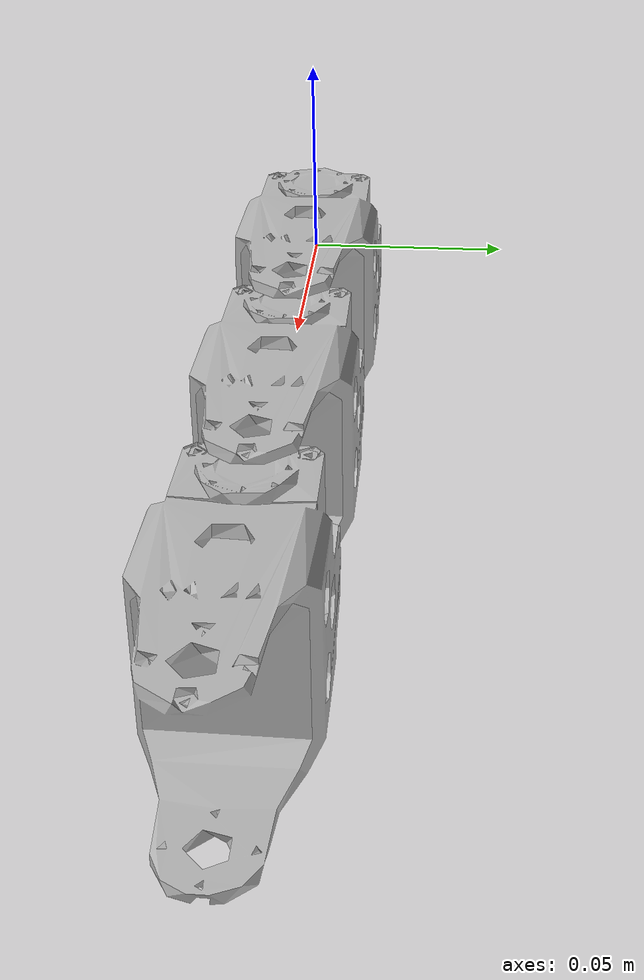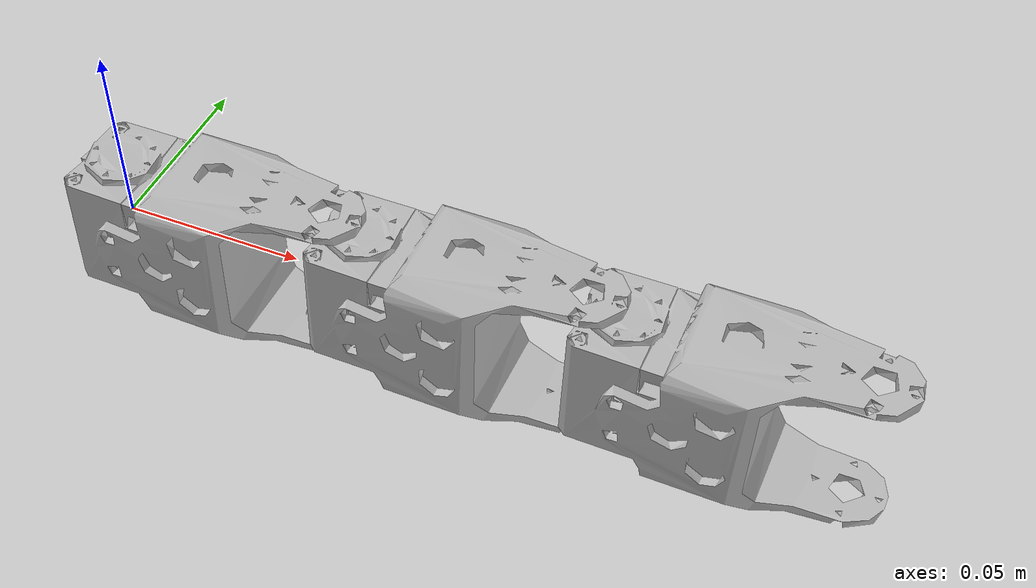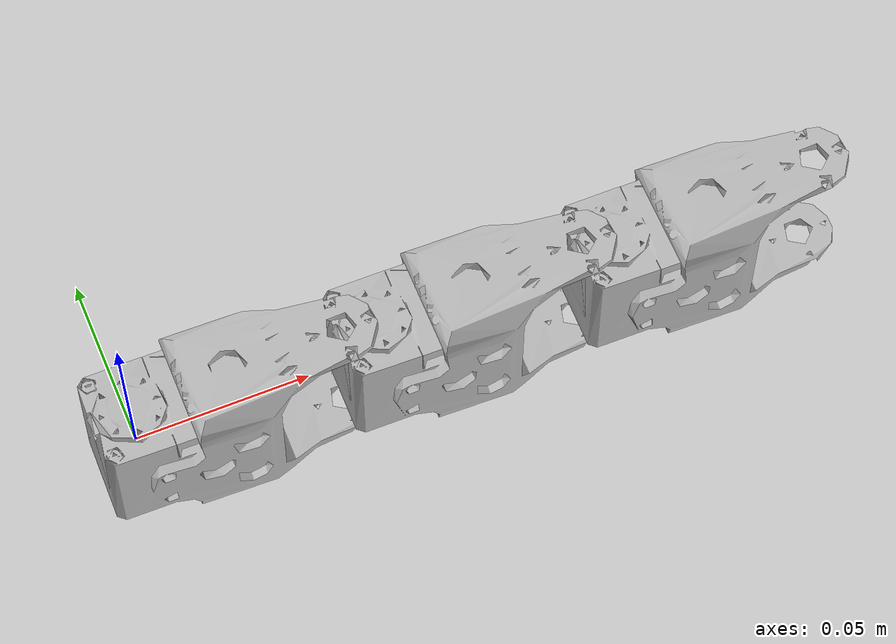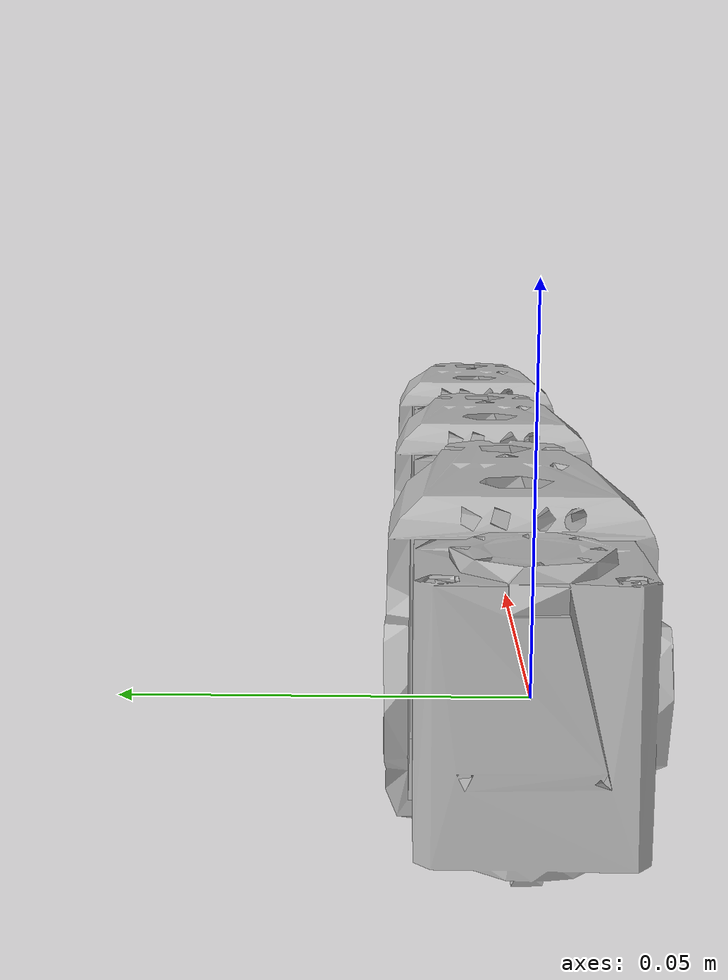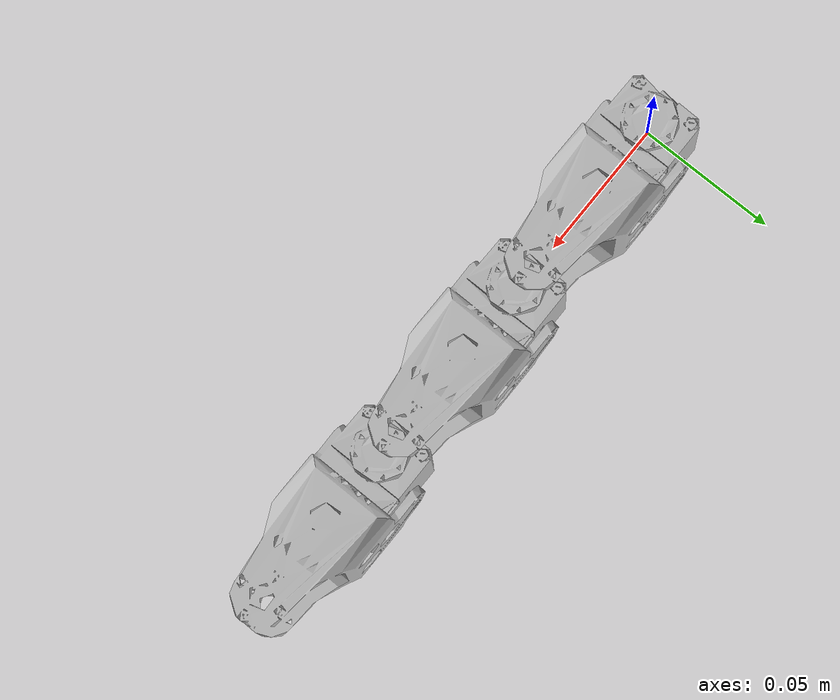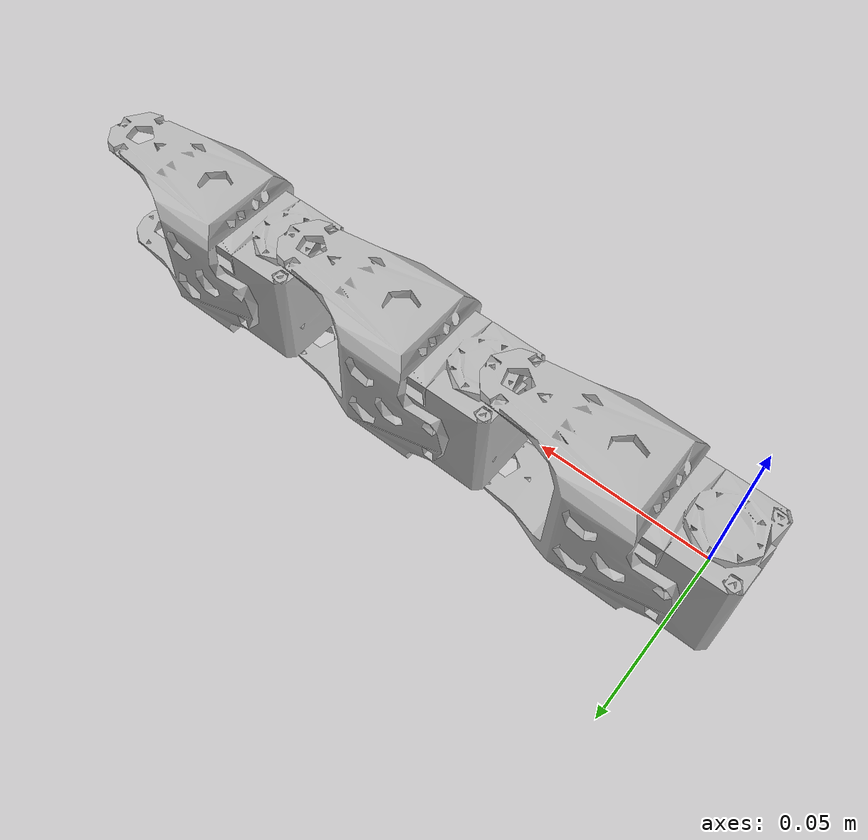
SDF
<?xml version="1.0" ?>
<sdf version="1.6">
	<world name="world">
		<model name="1guilla">
			<pose>0.0 0.0 0.0 0.0 0.0 0.0</pose>

			<link name="link0">
				<pose>0. 0 0 0 0 0</pose>
				<inertial>
					<pose>0.0162396 0.000150087 -0.000959669 0 0 0</pose>
					<mass>0.0481571</mass>
					<density>800.0</density>
					<inertia>
						<ixx>1.07482e-05</ixx>
						<ixy>8.49192e-09</ixy>
						<ixz>-5.7129e-08</ixz>
						<iyy>1.86555e-05</iyy>
						<iyz>6.58877e-09</iyz>
						<izz>1.57938e-05</izz>
					</inertia>
				</inertial>
				<collision name="link0_collision">
					<pose>0.0 0.0 0.0 0.0 0.0 0.0</pose>
					<geometry>
						<mesh>
							<uri>meshes/link1_collision.stl</uri>
							<scale>1.0 1.0 1.0</scale>
						</mesh>
					</geometry>
				</collision>
				<visual name="link0_visual">
					<pose>0.0 0.0 0.0 0.0 0.0 0.0</pose>
					<geometry>
						<mesh>
							<uri>meshes/link1.obj</uri>
							<scale>1.0 1.0 1.0</scale>
						</mesh>
					</geometry>
				</visual>
			</link>

			<link name="link1">
				<pose>0.07 0 0 0 0 0</pose>
				<inertial>
					<pose>0.0162396 0.000150087 -0.000959669 0 0 0</pose>
					<mass>0.0481571</mass>
					<density>800.0</density>
					<inertia>
						<ixx>1.07482e-05</ixx>
						<ixy>8.49192e-09</ixy>
						<ixz>-5.7129e-08</ixz>
						<iyy>1.86555e-05</iyy>
						<iyz>6.58877e-09</iyz>
						<izz>1.57938e-05</izz>
					</inertia>
				</inertial>
				<collision name="link1_collision">
					<pose>0.0 0.0 0.0 0.0 0.0 0.0</pose>
					<geometry>
						<mesh>
							<uri>meshes/link1_collision.stl</uri>
							<scale>1.0 1.0 1.0</scale>
						</mesh>
					</geometry>
				</collision>
				<visual name="link1_visual">
					<pose>0.0 0.0 0.0 0.0 0.0 0.0</pose>
					<geometry>
						<mesh>
							<uri>meshes/link1.obj</uri>
							<scale>1.0 1.0 1.0</scale>
						</mesh>
					</geometry>
				</visual>
			</link>

			<link name="link2">
				<pose>0.14 0 0 0 0 0</pose>
				<inertial>
					<pose>0.0162396 0.000150087 -0.000959669 0 0 0</pose>
					<mass>0.0481571</mass>
					<density>800.0</density>
					<inertia>
						<ixx>1.07482e-05</ixx>
						<ixy>8.49192e-09</ixy>
						<ixz>-5.7129e-08</ixz>
						<iyy>1.86555e-05</iyy>
						<iyz>6.58877e-09</iyz>
						<izz>1.57938e-05</izz>
					</inertia>
				</inertial>
				<collision name="link2_collision">
					<pose>0.0 0.0 0.0 0.0 0.0 0.0</pose>
					<geometry>
						<mesh>
							<uri>meshes/link1_collision.stl</uri>
							<scale>1.0 1.0 1.0</scale>
						</mesh>
					</geometry>
				</collision>
				<visual name="link2_visual">
					<pose>0.0 0.0 0.0 0.0 0.0 0.0</pose>
					<geometry>
						<mesh>
							<uri>meshes/link1.obj</uri>
							<scale>1.0 1.0 1.0</scale>
						</mesh>
					</geometry>
				</visual>
			</link>

			<joint name="joint_body_00" type="revolute">
				<parent>link0</parent>
				<child>link1</child>
				<pose>0 0 0 0 0 0</pose>
				<axis>
					<xyz>0.0 0.0 -1.0</xyz>
					<limit>
						<lower>-1.5708</lower>
						<upper>1.5708</upper>
					</limit>
				</axis>
			</joint>
			<joint name="joint_body_01" type="revolute">
				<parent>link1</parent>
				<child>link2</child>
				<pose>0 0 0 0 0 0</pose>
				<axis>
					<xyz>0.0 0.0 -1.0</xyz>
					<limit>
						<lower>-1.5708</lower>
						<upper>1.5708</upper>
					</limit>
				</axis>
			</joint>
			<linkend name="link8">
				<pose>0.8133 0 0</pose>
			</linkend>
		</model>
	</world>
</sdf>
